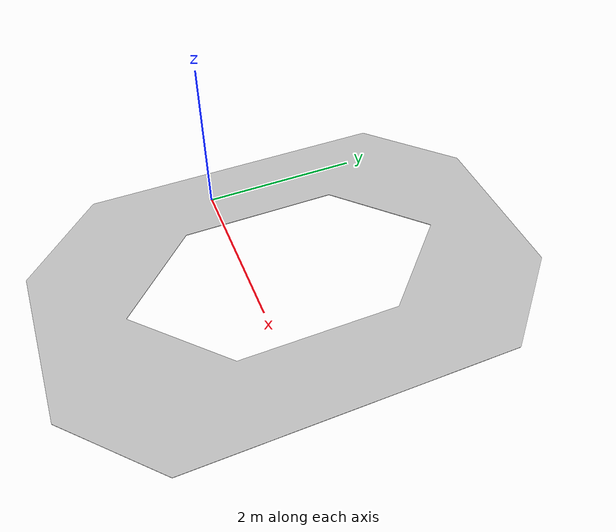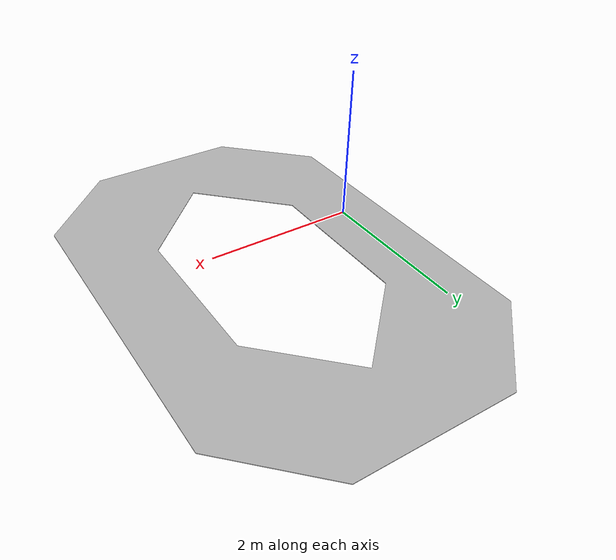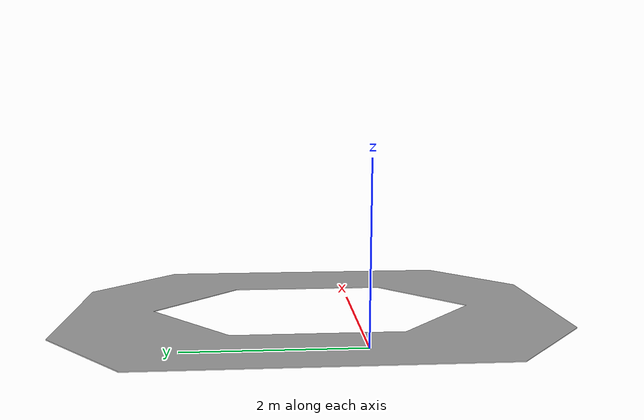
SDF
<?xml version="1.0" ?>
<sdf version="1.5">
  <model name="A2SE_Mappe_OL">
    <static>true</static>
    <link name="link">
      <collision name="collision">
        <geometry>
          <mesh>
            <scale>1 1 1</scale>
            <uri>model://A2se_mappe_OL/meshes/GanzeStrasse_OL.dae</uri>
          </mesh>
        </geometry>
      </collision>
      <visual name="visual">
        <geometry>
          <mesh>
            <scale>1 1 1</scale>
            <uri>model://A2se_mappe_OL/meshes/GanzeStrasse_OL.dae</uri>
          </mesh>
        </geometry>
      </visual>
    </link>
  </model>
</sdf>
